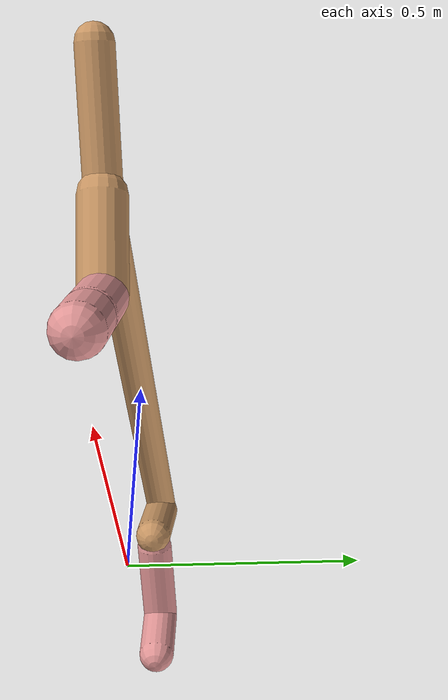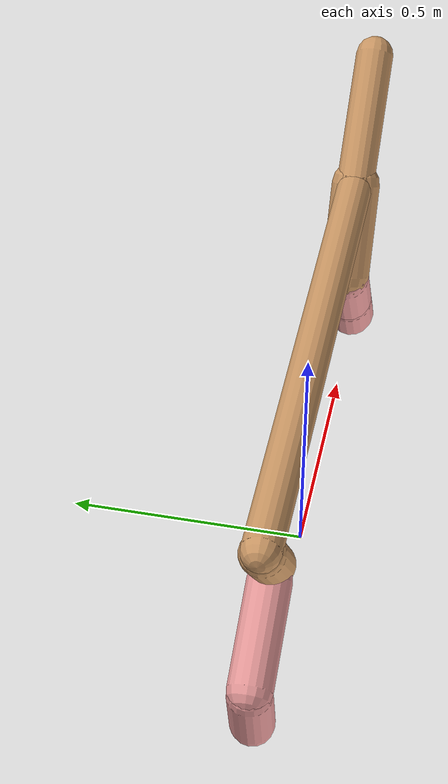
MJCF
<mujoco model="cheetah">
  <compiler angle="radian" coordinate="local" inertiafromgeom="true" settotalmass="14" />
  <default>
    <joint armature=".1" damping=".01" limited="true" solimplimit="0 .8 .03" solreflimit=".02 1" stiffness="8" />
    <geom conaffinity="0" condim="3" contype="1" friction="0.8 .1 .1" rgba="0.8 0.6 .4 1" solimp="0.0 0.8 0.01" solref="0.02 1" />
    <motor ctrllimited="true" ctrlrange="-1 1" />
  </default>
  <size nstack="300000" nuser_geom="1" />
  <option gravity="0 0 -9.81" timestep="0.01" />
  <worldbody>
    <body name="torso" pos="0.0 0.0 0.4820394639728204">
      <joint armature="0" axis="1 0 0" damping="0" limited="false" name="ignorex" pos="0 0 0" stiffness="0" type="slide" />
      <joint armature="0" axis="0 0 1" damping="0" limited="false" name="ignorez" pos="0 0 0" stiffness="0" type="slide" />
      <joint armature="0" axis="0 1 0" damping="0" limited="false" name="ignorey" pos="0 0 0" stiffness="0" type="hinge" />
      <geom fromto="-0.5 0.0 0.0 0.6448532414372217 0.0 0.0" name="torso" size="0.03914462232853217" type="capsule" />
      <geom axisangle="0 1 0 .87" name="head" pos="0.7448532414372216 0.0 0.1" size="0.04153862053142739 0.15" type="capsule" />

      <body name="bthigh" pos="-.5 0 0">
        <joint axis="0 1 0" damping="6" name="bthigh" pos="0 0 0" range="-.52 1.05" stiffness="240" type="hinge" />
        <geom axisangle="0 1 0 -3.8" name="bthigh" pos="0.07442227666340981 0.0 -0.09674895966243274" size="0.044466710053096555 0.10304941460940412" type="capsule" />
        <body name="bshin" pos="0.10884455332681961 0.0 -0.18349791932486548">
          <joint axis="0 1 0" damping="4.5" name="bshin" pos="0 0 0" range="-.785 .785" stiffness="180" type="hinge" />
          <geom axisangle="0 1 0 -2.03" name="bshin" pos="-0.10118440249822817 0.0 -0.05059220124911409" rgba="0.9 0.6 0.6 1" size="0.044466710053096555 0.10660284269938357" type="capsule" />
          <body name="bfoot" pos="-0.20236880499645635 0.0 -0.10118440249822817">
            <joint axis="0 1 0" damping="3" name="bfoot" pos="0 0 0" range="-.4 .785" stiffness="120" type="hinge" />
            <geom axisangle="0 1 0 -.27" name="bfoot" pos="0.021964537812916393 0.0 -0.071018672261763" rgba="0.9 0.6 0.6 1" size="0.044466710053096555 0.0668044480916137" type="capsule" />
            <inertial mass="10" />
          </body>
        </body>
      </body>
      <body name="fthigh" pos="0.6448532414372217 0.0 0.0">
        <joint axis="0 1 0" damping="4.5" name="fthigh" pos="0 0 0" range="-1.5 0.8" stiffness="180" type="hinge" />
        <geom axisangle="0 1 0 .52" name="fthigh" pos="-0.054721138240618555 0.0 -0.09380766555534609" size="0.05348759350673779 0.1026770383978924" type="capsule" />
        <body name="fshin" pos="-0.10944227648123711 0.0 -0.18761533111069217">
          <joint axis="0 1 0" damping="3" name="fshin" pos="0 0 0" range="-1.2 1.1" stiffness="120" type="hinge" />
          <geom axisangle="0 1 0 -.6" name="fshin" pos="0.050850348843927556 0.0 -0.07040817532236122" rgba="0.9 0.6 0.6 1" size="0.05348759350673779 0.08183282759531273" type="capsule" />
          <body name="ffoot" pos="0.10170069768785511 0.0 -0.14081635064472245">
            <joint axis="0 1 0" damping="1.5" name="ffoot" pos="0 0 0" range="-3.1 -0.3" stiffness="60" type="hinge" />
            <geom axisangle="0 1 0 -.6" name="ffoot" pos="0.036369804380290825 0.0 -0.05657525125823018" rgba="0.9 0.6 0.6 1" size="0.05348759350673779 0.054040546525206526" type="capsule" />
            <inertial mass="10" />
          </body>
        </body>
      </body>
    </body>
  </worldbody>
  <actuator>
    <motor gear="120" joint="bthigh" name="bthigh" />
    <motor gear="90" joint="bshin" name="bshin" />
    <motor gear="60" joint="bfoot" name="bfoot" />
    <motor gear="120" joint="fthigh" name="fthigh" />
    <motor gear="60" joint="fshin" name="fshin" />
    <motor gear="30" joint="ffoot" name="ffoot" />
  </actuator>
</mujoco>
